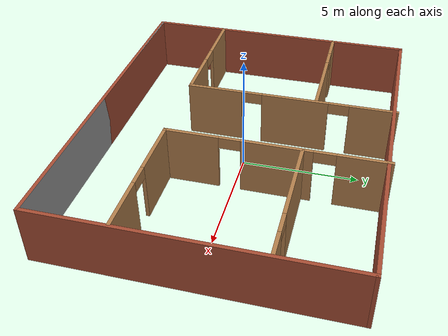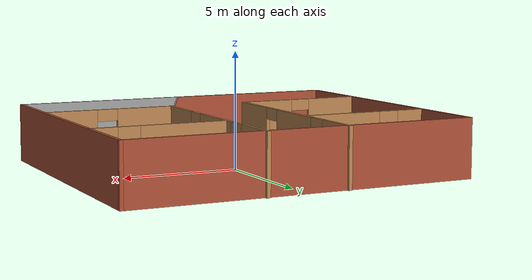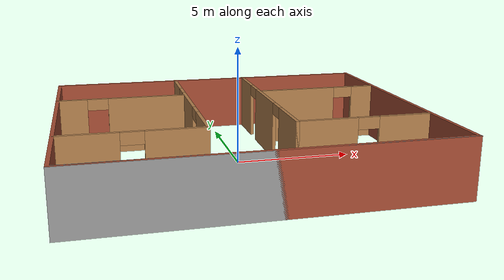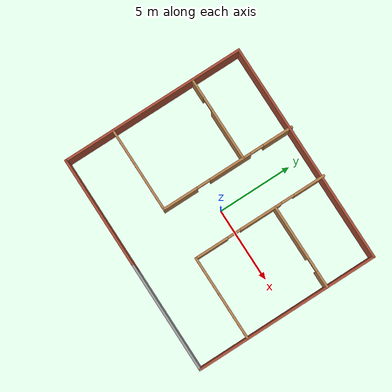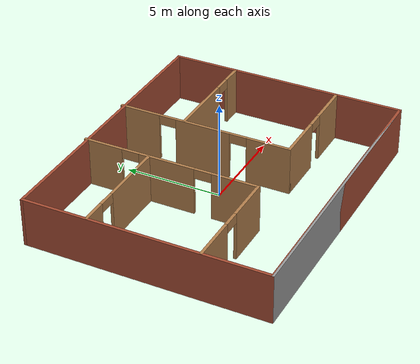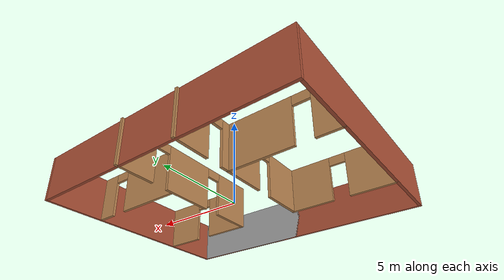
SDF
<?xml version='1.0'?>
<sdf version='1.7'>
  <model name='floor_test'>
    <pose>-0.0435 -0.008391 0 0 -0 0</pose>
    <link name='Wall_10'>
      <collision name='Wall_10_Collision'>
        <geometry>
          <box>
            <size>15 0.15 2.5</size>
          </box>
        </geometry>
        <pose>0 0 1.25 0 -0 0</pose>
      </collision>
      <visual name='Wall_10_Visual'>
        <pose>0 0 1.25 0 -0 0</pose>
        <geometry>
          <box>
            <size>15 0.15 2.5</size>
          </box>
        </geometry>
        <material>
          <script>
            <uri>file://media/materials/scripts/gazebo.material</uri>
            <name>Gazebo/Bricks</name>
          </script>
          <ambient>1 1 1 1</ambient>
        </material>
        <meta>
          <layer>0</layer>
        </meta>
      </visual>
      <pose>-0 6.11008 0 0 -0 3.14159</pose>
    </link>
    <link name='Wall_11'>
      <collision name='Wall_11_Collision'>
        <geometry>
          <box>
            <size>12.5 0.15 2.5</size>
          </box>
        </geometry>
        <pose>0 0 1.25 0 -0 0</pose>
      </collision>
      <visual name='Wall_11_Visual'>
        <pose>0 0 1.25 0 -0 0</pose>
        <geometry>
          <box>
            <size>12.5 0.15 2.5</size>
          </box>
        </geometry>
        <material>
          <script>
            <uri>file://media/materials/scripts/gazebo.material</uri>
            <name>Gazebo/Bricks</name>
          </script>
          <ambient>1 1 1 1</ambient>
        </material>
        <meta>
          <layer>0</layer>
        </meta>
      </visual>
      <pose>-7.425 -0.064916 0 0 -0 -1.5708</pose>
    </link>
    <link name='Wall_2'>
      <collision name='Wall_2_Collision'>
        <geometry>
          <box>
            <size>15 0.15 2.5</size>
          </box>
        </geometry>
        <pose>0 0 1.25 0 -0 0</pose>
      </collision>
      <visual name='Wall_2_Visual'>
        <pose>0 0 1.25 0 -0 0</pose>
        <geometry>
          <box>
            <size>15 0.15 2.5</size>
          </box>
        </geometry>
        <material>
          <script>
            <uri>file://media/materials/scripts/gazebo.material</uri>
            <name>Gazebo/Grey</name>
          </script>
          <ambient>1 1 1 1</ambient>
        </material>
        <meta>
          <layer>0</layer>
        </meta>
      </visual>
      <pose>-0 -6.23992 0 0 -0 0</pose>
    </link>
    <link name='Wall_3'>
      <collision name='Wall_3_Collision'>
        <geometry>
          <box>
            <size>15 0.15 2.5</size>
          </box>
        </geometry>
        <pose>0 0 1.25 0 -0 0</pose>
      </collision>
      <visual name='Wall_3_Visual'>
        <pose>0 0 1.25 0 -0 0</pose>
        <geometry>
          <box>
            <size>15 0.15 2.5</size>
          </box>
        </geometry>
        <material>
          <script>
            <uri>file://media/materials/scripts/gazebo.material</uri>
            <name>Gazebo/Bricks</name>
          </script>
          <ambient>1 1 1 1</ambient>
        </material>
        <meta>
          <layer>0</layer>
        </meta>
      </visual>
      <pose>-0 -6.23992 0 0 -0 3.14159</pose>
    </link>
    <link name='Wall_39'>
      <pose>-4.57825 -2.87806 0 0 -0 0</pose>
      <visual name='Wall_39_Visual_0'>
        <pose>-1.67547 0 1.25 0 -0 0</pose>
        <geometry>
          <box>
            <size>2.39905 0.15 2.5</size>
          </box>
        </geometry>
        <material>
          <script>
            <uri>file://media/materials/scripts/gazebo.material</uri>
            <name>Gazebo/Wood</name>
          </script>
          <ambient>1 1 1 1</ambient>
        </material>
        <meta>
          <layer>0</layer>
        </meta>
      </visual>
      <collision name='Wall_39_Collision_0'>
        <geometry>
          <box>
            <size>2.39905 0.15 2.5</size>
          </box>
        </geometry>
        <pose>-1.67547 0 1.25 0 -0 0</pose>
      </collision>
      <visual name='Wall_39_Visual_1'>
        <pose>1.64953 0 1.25 0 -0 0</pose>
        <geometry>
          <box>
            <size>2.45095 0.15 2.5</size>
          </box>
        </geometry>
        <material>
          <script>
            <uri>file://media/materials/scripts/gazebo.material</uri>
            <name>Gazebo/Wood</name>
          </script>
          <ambient>1 1 1 1</ambient>
        </material>
        <meta>
          <layer>0</layer>
        </meta>
      </visual>
      <collision name='Wall_39_Collision_1'>
        <geometry>
          <box>
            <size>2.45095 0.15 2.5</size>
          </box>
        </geometry>
        <pose>1.64953 0 1.25 0 -0 0</pose>
      </collision>
      <visual name='Wall_39_Visual_2'>
        <pose>-0.025947 0 2.25 0 -0 0</pose>
        <geometry>
          <box>
            <size>0.9 0.15 0.5</size>
          </box>
        </geometry>
        <material>
          <script>
            <uri>file://media/materials/scripts/gazebo.material</uri>
            <name>Gazebo/Wood</name>
          </script>
          <ambient>1 1 1 1</ambient>
        </material>
        <meta>
          <layer>0</layer>
        </meta>
      </visual>
      <collision name='Wall_39_Collision_2'>
        <geometry>
          <box>
            <size>0.9 0.15 0.5</size>
          </box>
        </geometry>
        <pose>-0.025947 0 2.25 0 -0 0</pose>
      </collision>
    </link>
    <link name='Wall_40'>
      <pose>-1.77825 1.67194 0 0 -0 1.5708</pose>
      <visual name='Wall_40_Visual_0'>
        <pose>-3.4043 0 1.25 0 -0 0</pose>
        <geometry>
          <box>
            <size>2.44139 0.15 2.5</size>
          </box>
        </geometry>
        <material>
          <script>
            <uri>file://media/materials/scripts/gazebo.material</uri>
            <name>Gazebo/Wood</name>
          </script>
          <ambient>1 1 1 1</ambient>
        </material>
        <meta>
          <layer>0</layer>
        </meta>
      </visual>
      <collision name='Wall_40_Collision_0'>
        <geometry>
          <box>
            <size>2.44139 0.15 2.5</size>
          </box>
        </geometry>
        <pose>-3.4043 0 1.25 0 -0 0</pose>
      </collision>
      <visual name='Wall_40_Visual_1'>
        <pose>0.17828 0 1.25 0 -0 0</pose>
        <geometry>
          <box>
            <size>2.92378 0.15 2.5</size>
          </box>
        </geometry>
        <material>
          <script>
            <uri>file://media/materials/scripts/gazebo.material</uri>
            <name>Gazebo/Wood</name>
          </script>
          <ambient>1 1 1 1</ambient>
        </material>
        <meta>
          <layer>0</layer>
        </meta>
      </visual>
      <collision name='Wall_40_Collision_1'>
        <geometry>
          <box>
            <size>2.92378 0.15 2.5</size>
          </box>
        </geometry>
        <pose>0.17828 0 1.25 0 -0 0</pose>
      </collision>
      <visual name='Wall_40_Visual_2'>
        <pose>3.58258 0 1.25 0 -0 0</pose>
        <geometry>
          <box>
            <size>2.08483 0.15 2.5</size>
          </box>
        </geometry>
        <material>
          <script>
            <uri>file://media/materials/scripts/gazebo.material</uri>
            <name>Gazebo/Wood</name>
          </script>
          <ambient>1 1 1 1</ambient>
        </material>
        <meta>
          <layer>0</layer>
        </meta>
      </visual>
      <collision name='Wall_40_Collision_2'>
        <geometry>
          <box>
            <size>2.08483 0.15 2.5</size>
          </box>
        </geometry>
        <pose>3.58258 0 1.25 0 -0 0</pose>
      </collision>
      <visual name='Wall_40_Visual_3'>
        <pose>-1.73361 0 2.25 0 -0 0</pose>
        <geometry>
          <box>
            <size>0.9 0.15 0.5</size>
          </box>
        </geometry>
        <material>
          <script>
            <uri>file://media/materials/scripts/gazebo.material</uri>
            <name>Gazebo/Wood</name>
          </script>
          <ambient>1 1 1 1</ambient>
        </material>
        <meta>
          <layer>0</layer>
        </meta>
      </visual>
      <collision name='Wall_40_Collision_3'>
        <geometry>
          <box>
            <size>0.9 0.15 0.5</size>
          </box>
        </geometry>
        <pose>-1.73361 0 2.25 0 -0 0</pose>
      </collision>
      <visual name='Wall_40_Visual_4'>
        <pose>2.09017 0 2.25 0 -0 0</pose>
        <geometry>
          <box>
            <size>0.9 0.15 0.5</size>
          </box>
        </geometry>
        <material>
          <script>
            <uri>file://media/materials/scripts/gazebo.material</uri>
            <name>Gazebo/Wood</name>
          </script>
          <ambient>1 1 1 1</ambient>
        </material>
        <meta>
          <layer>0</layer>
        </meta>
      </visual>
      <collision name='Wall_40_Collision_4'>
        <geometry>
          <box>
            <size>0.9 0.15 0.5</size>
          </box>
        </geometry>
        <pose>2.09017 0 2.25 0 -0 0</pose>
      </collision>
    </link>
    <link name='Wall_42'>
      <pose>-4.58791 2.78322 0 0 -0 0</pose>
      <visual name='Wall_42_Visual_0'>
        <pose>-2.22127 0 1.25 0 -0 0</pose>
        <geometry>
          <box>
            <size>1.30746 0.15 2.5</size>
          </box>
        </geometry>
        <material>
          <script>
            <uri>file://media/materials/scripts/gazebo.material</uri>
            <name>Gazebo/Wood</name>
          </script>
          <ambient>1 1 1 1</ambient>
        </material>
        <meta>
          <layer>0</layer>
        </meta>
      </visual>
      <collision name='Wall_42_Collision_0'>
        <geometry>
          <box>
            <size>1.30746 0.15 2.5</size>
          </box>
        </geometry>
        <pose>-2.22127 0 1.25 0 -0 0</pose>
      </collision>
      <visual name='Wall_42_Visual_1'>
        <pose>1.10373 0 1.25 0 -0 0</pose>
        <geometry>
          <box>
            <size>3.54254 0.15 2.5</size>
          </box>
        </geometry>
        <material>
          <script>
            <uri>file://media/materials/scripts/gazebo.material</uri>
            <name>Gazebo/Wood</name>
          </script>
          <ambient>1 1 1 1</ambient>
        </material>
        <meta>
          <layer>0</layer>
        </meta>
      </visual>
      <collision name='Wall_42_Collision_1'>
        <geometry>
          <box>
            <size>3.54254 0.15 2.5</size>
          </box>
        </geometry>
        <pose>1.10373 0 1.25 0 -0 0</pose>
      </collision>
      <visual name='Wall_42_Visual_2'>
        <pose>-1.11754 0 2.25 0 -0 0</pose>
        <geometry>
          <box>
            <size>0.9 0.15 0.5</size>
          </box>
        </geometry>
        <material>
          <script>
            <uri>file://media/materials/scripts/gazebo.material</uri>
            <name>Gazebo/Wood</name>
          </script>
          <ambient>1 1 1 1</ambient>
        </material>
        <meta>
          <layer>0</layer>
        </meta>
      </visual>
      <collision name='Wall_42_Collision_2'>
        <geometry>
          <box>
            <size>0.9 0.15 0.5</size>
          </box>
        </geometry>
        <pose>-1.11754 0 2.25 0 -0 0</pose>
      </collision>
    </link>
    <link name='Wall_44'>
      <pose>1.72798 1.68992 0 0 -0 -1.5708</pose>
      <visual name='Wall_44_Visual_0'>
        <pose>-3.52771 0 1.25 0 -0 0</pose>
        <geometry>
          <box>
            <size>2.19458 0.15 2.5</size>
          </box>
        </geometry>
        <material>
          <script>
            <uri>file://media/materials/scripts/gazebo.material</uri>
            <name>Gazebo/Wood</name>
          </script>
          <ambient>1 1 1 1</ambient>
        </material>
        <meta>
          <layer>0</layer>
        </meta>
      </visual>
      <collision name='Wall_44_Collision_0'>
        <geometry>
          <box>
            <size>2.19458 0.15 2.5</size>
          </box>
        </geometry>
        <pose>-3.52771 0 1.25 0 -0 0</pose>
      </collision>
      <visual name='Wall_44_Visual_1'>
        <pose>-0.068532 0 1.25 0 -0 0</pose>
        <geometry>
          <box>
            <size>2.92378 0.15 2.5</size>
          </box>
        </geometry>
        <material>
          <script>
            <uri>file://media/materials/scripts/gazebo.material</uri>
            <name>Gazebo/Wood</name>
          </script>
          <ambient>1 1 1 1</ambient>
        </material>
        <meta>
          <layer>0</layer>
        </meta>
      </visual>
      <collision name='Wall_44_Collision_1'>
        <geometry>
          <box>
            <size>2.92378 0.15 2.5</size>
          </box>
        </geometry>
        <pose>-0.068532 0 1.25 0 -0 0</pose>
      </collision>
      <visual name='Wall_44_Visual_2'>
        <pose>3.45918 0 1.25 0 -0 0</pose>
        <geometry>
          <box>
            <size>2.33164 0.15 2.5</size>
          </box>
        </geometry>
        <material>
          <script>
            <uri>file://media/materials/scripts/gazebo.material</uri>
            <name>Gazebo/Wood</name>
          </script>
          <ambient>1 1 1 1</ambient>
        </material>
        <meta>
          <layer>0</layer>
        </meta>
      </visual>
      <collision name='Wall_44_Collision_2'>
        <geometry>
          <box>
            <size>2.33164 0.15 2.5</size>
          </box>
        </geometry>
        <pose>3.45918 0 1.25 0 -0 0</pose>
      </collision>
      <visual name='Wall_44_Visual_3'>
        <pose>-1.98042 0 2.25 0 -0 0</pose>
        <geometry>
          <box>
            <size>0.9 0.15 0.5</size>
          </box>
        </geometry>
        <material>
          <script>
            <uri>file://media/materials/scripts/gazebo.material</uri>
            <name>Gazebo/Wood</name>
          </script>
          <ambient>1 1 1 1</ambient>
        </material>
        <meta>
          <layer>0</layer>
        </meta>
      </visual>
      <collision name='Wall_44_Collision_3'>
        <geometry>
          <box>
            <size>0.9 0.15 0.5</size>
          </box>
        </geometry>
        <pose>-1.98042 0 2.25 0 -0 0</pose>
      </collision>
      <visual name='Wall_44_Visual_4'>
        <pose>1.84336 0 2.25 0 -0 0</pose>
        <geometry>
          <box>
            <size>0.9 0.15 0.5</size>
          </box>
        </geometry>
        <material>
          <script>
            <uri>file://media/materials/scripts/gazebo.material</uri>
            <name>Gazebo/Wood</name>
          </script>
          <ambient>1 1 1 1</ambient>
        </material>
        <meta>
          <layer>0</layer>
        </meta>
      </visual>
      <collision name='Wall_44_Collision_4'>
        <geometry>
          <box>
            <size>0.9 0.15 0.5</size>
          </box>
        </geometry>
        <pose>1.84336 0 2.25 0 -0 0</pose>
      </collision>
    </link>
    <link name='Wall_45'>
      <pose>4.52798 -2.86008 0 0 -0 0</pose>
      <visual name='Wall_45_Visual_0'>
        <pose>-1.57887 0 1.25 0 -0 0</pose>
        <geometry>
          <box>
            <size>2.59225 0.15 2.5</size>
          </box>
        </geometry>
        <material>
          <script>
            <uri>file://media/materials/scripts/gazebo.material</uri>
            <name>Gazebo/Wood</name>
          </script>
          <ambient>1 1 1 1</ambient>
        </material>
        <meta>
          <layer>0</layer>
        </meta>
      </visual>
      <collision name='Wall_45_Collision_0'>
        <geometry>
          <box>
            <size>2.59225 0.15 2.5</size>
          </box>
        </geometry>
        <pose>-1.57887 0 1.25 0 -0 0</pose>
      </collision>
      <visual name='Wall_45_Visual_1'>
        <pose>1.74613 0 1.25 0 -0 0</pose>
        <geometry>
          <box>
            <size>2.25775 0.15 2.5</size>
          </box>
        </geometry>
        <material>
          <script>
            <uri>file://media/materials/scripts/gazebo.material</uri>
            <name>Gazebo/Wood</name>
          </script>
          <ambient>1 1 1 1</ambient>
        </material>
        <meta>
          <layer>0</layer>
        </meta>
      </visual>
      <collision name='Wall_45_Collision_1'>
        <geometry>
          <box>
            <size>2.25775 0.15 2.5</size>
          </box>
        </geometry>
        <pose>1.74613 0 1.25 0 -0 0</pose>
      </collision>
      <visual name='Wall_45_Visual_2'>
        <pose>0.167252 0 2.25 0 -0 0</pose>
        <geometry>
          <box>
            <size>0.9 0.15 0.5</size>
          </box>
        </geometry>
        <material>
          <script>
            <uri>file://media/materials/scripts/gazebo.material</uri>
            <name>Gazebo/Wood</name>
          </script>
          <ambient>1 1 1 1</ambient>
        </material>
        <meta>
          <layer>0</layer>
        </meta>
      </visual>
      <collision name='Wall_45_Collision_2'>
        <geometry>
          <box>
            <size>0.9 0.15 0.5</size>
          </box>
        </geometry>
        <pose>0.167252 0 2.25 0 -0 0</pose>
      </collision>
    </link>
    <link name='Wall_47'>
      <pose>4.58916 2.78322 0 0 -0 0</pose>
      <visual name='Wall_47_Visual_0'>
        <pose>-1.02825 0 1.25 0 -0 0</pose>
        <geometry>
          <box>
            <size>3.6935 0.15 2.5</size>
          </box>
        </geometry>
        <material>
          <script>
            <uri>file://media/materials/scripts/gazebo.material</uri>
            <name>Gazebo/Wood</name>
          </script>
          <ambient>1 1 1 1</ambient>
        </material>
        <meta>
          <layer>0</layer>
        </meta>
      </visual>
      <collision name='Wall_47_Collision_0'>
        <geometry>
          <box>
            <size>3.6935 0.15 2.5</size>
          </box>
        </geometry>
        <pose>-1.02825 0 1.25 0 -0 0</pose>
      </collision>
      <visual name='Wall_47_Visual_1'>
        <pose>2.29675 0 1.25 0 -0 0</pose>
        <geometry>
          <box>
            <size>1.1565 0.15 2.5</size>
          </box>
        </geometry>
        <material>
          <script>
            <uri>file://media/materials/scripts/gazebo.material</uri>
            <name>Gazebo/Wood</name>
          </script>
          <ambient>1 1 1 1</ambient>
        </material>
        <meta>
          <layer>0</layer>
        </meta>
      </visual>
      <collision name='Wall_47_Collision_1'>
        <geometry>
          <box>
            <size>1.1565 0.15 2.5</size>
          </box>
        </geometry>
        <pose>2.29675 0 1.25 0 -0 0</pose>
      </collision>
      <visual name='Wall_47_Visual_2'>
        <pose>1.2685 0 2.25 0 -0 0</pose>
        <geometry>
          <box>
            <size>0.9 0.15 0.5</size>
          </box>
        </geometry>
        <material>
          <script>
            <uri>file://media/materials/scripts/gazebo.material</uri>
            <name>Gazebo/Wood</name>
          </script>
          <ambient>1 1 1 1</ambient>
        </material>
        <meta>
          <layer>0</layer>
        </meta>
      </visual>
      <collision name='Wall_47_Collision_2'>
        <geometry>
          <box>
            <size>0.9 0.15 0.5</size>
          </box>
        </geometry>
        <pose>1.2685 0 2.25 0 -0 0</pose>
      </collision>
    </link>
    <link name='Wall_5'>
      <collision name='Wall_5_Collision'>
        <geometry>
          <box>
            <size>12.5 0.15 2.5</size>
          </box>
        </geometry>
        <pose>0 0 1.25 0 -0 0</pose>
      </collision>
      <visual name='Wall_5_Visual'>
        <pose>0 0 1.25 0 -0 0</pose>
        <geometry>
          <box>
            <size>12.5 0.15 2.5</size>
          </box>
        </geometry>
        <material>
          <script>
            <uri>file://media/materials/scripts/gazebo.material</uri>
            <name>Gazebo/Bricks</name>
          </script>
          <ambient>1 1 1 1</ambient>
        </material>
        <meta>
          <layer>0</layer>
        </meta>
      </visual>
      <pose>7.425 -0.064916 0 0 -0 1.5708</pose>
    </link>
    <static>1</static>
  </model>
</sdf>
